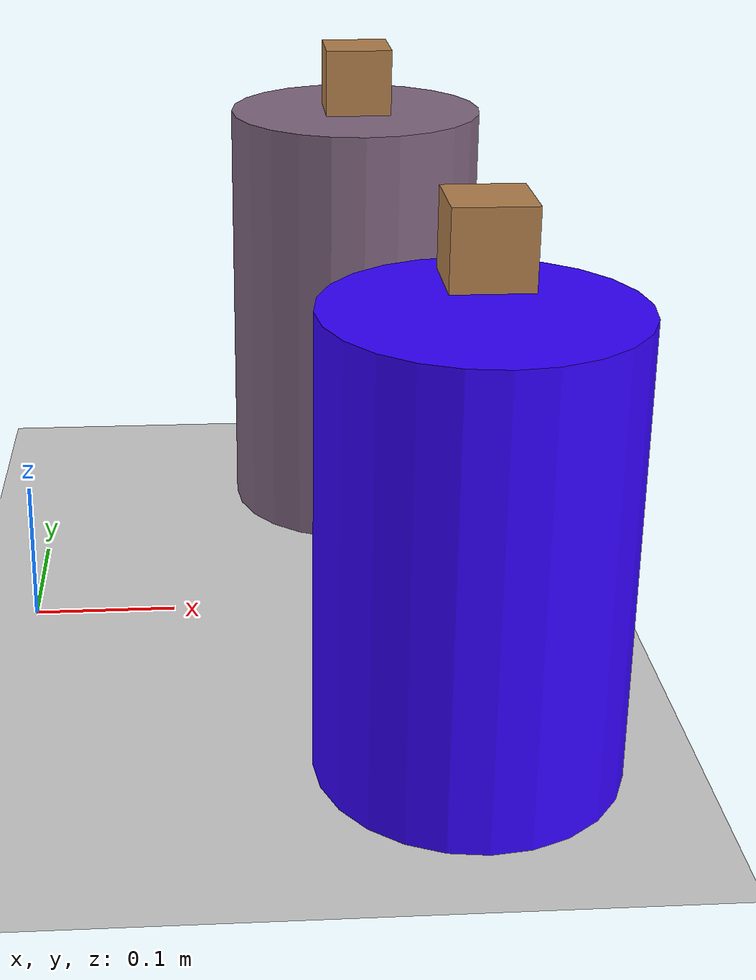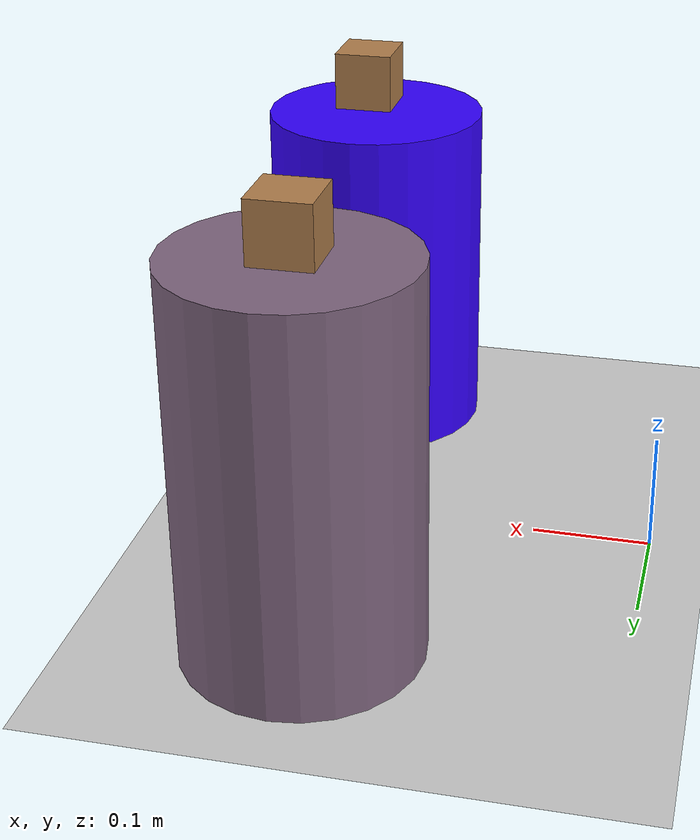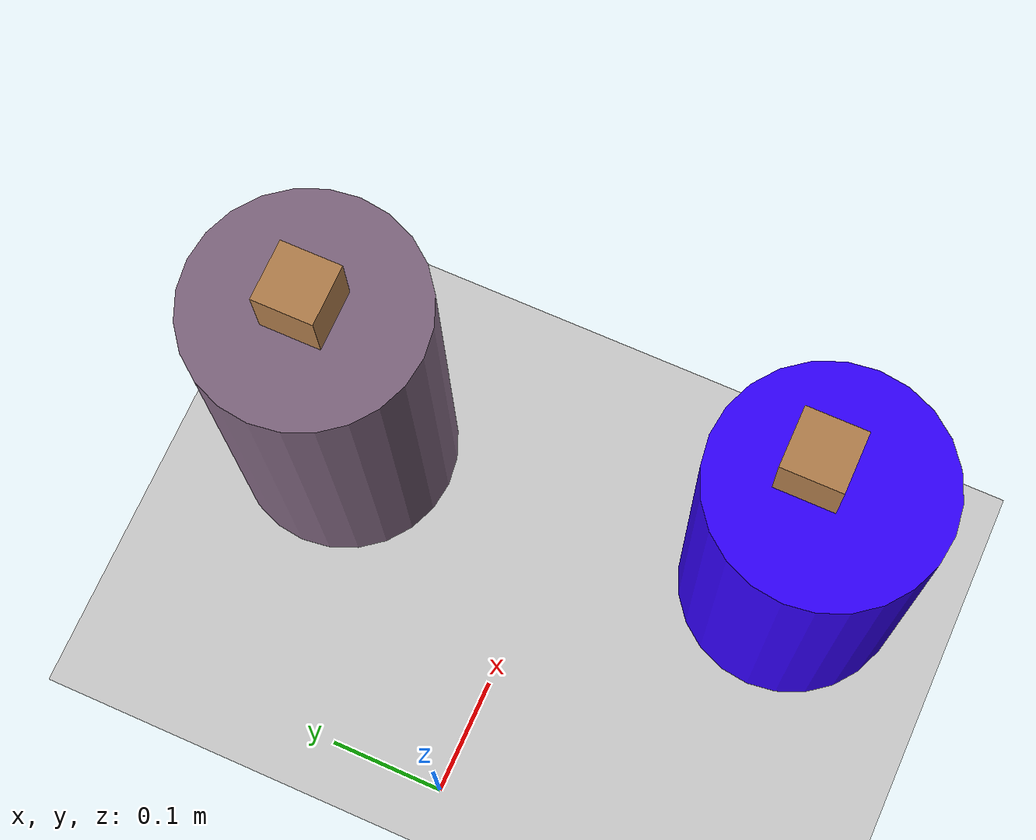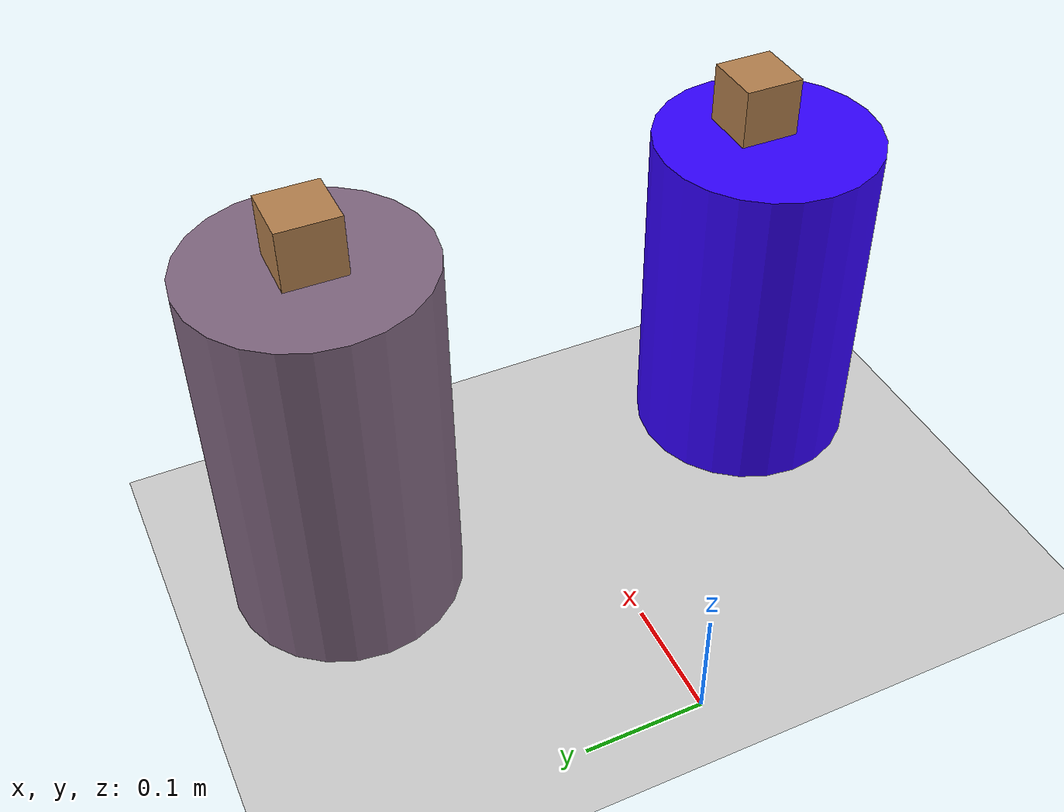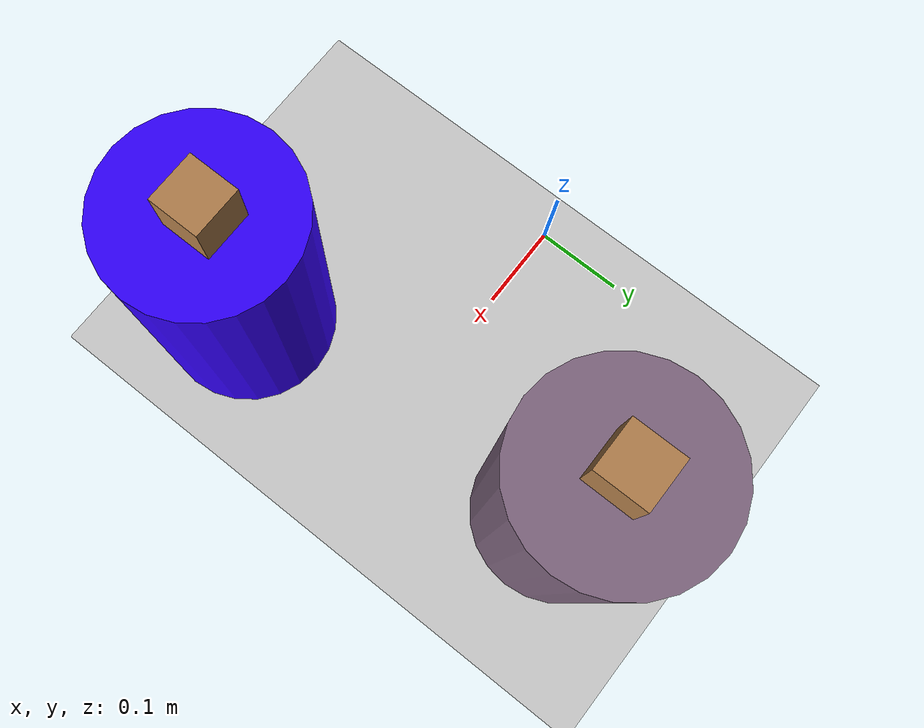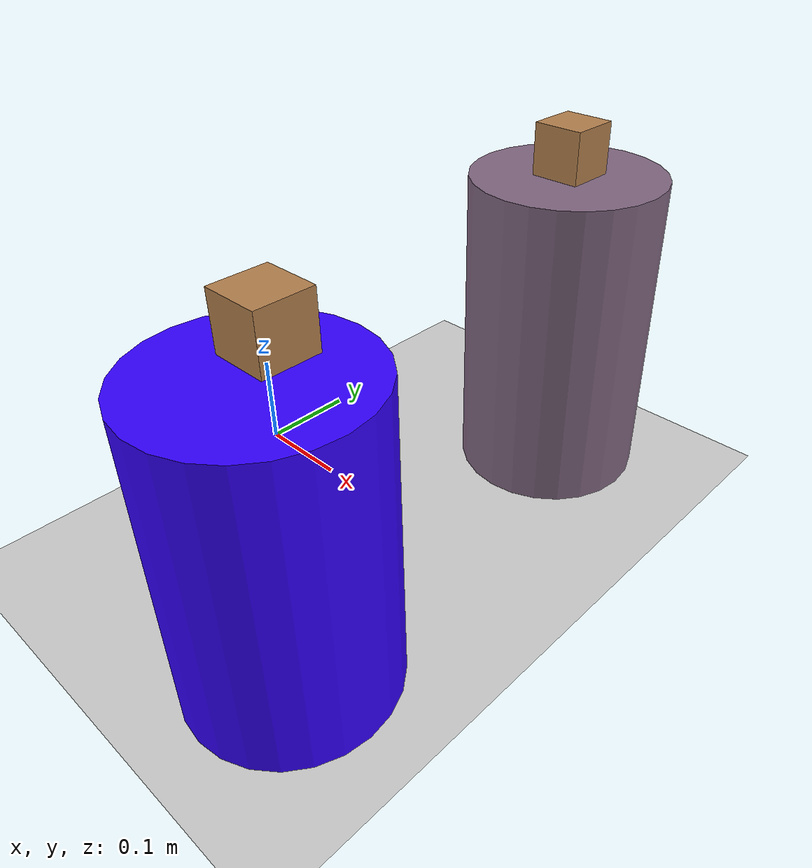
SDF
<?xml version="1.0" ?>
<sdf version="1.6">
  <world name="default">
    <include>
      <uri>model://ground_plane</uri>
    </include>

    <include>
      <uri>model://sun</uri>
    </include>

    <include>
      <uri>model://unit_cylnder</uri>
      <pose> 0.286532 -0.203272 0.150184 0 0 0</pose>
    </include>

    <include>
      <uri>model://unit_cylnder_green</uri>
      <pose> 0.24847 0.203243 0.163058 0 0 0</pose>
    </include>

    <include>
      <uri>model://green_wooden_cube</uri>
      <pose> 0.288971 -0.188986 0.312240 0 0 0</pose>
    </include>

    <include>
      <uri>model://blue_wooden_cube</uri>
      <pose> 0.248819 0.203177 0.32611 0 0 0</pose>
    </include> 2484724847

    <physics type="ode">
      <real_time_update_rate>1000.0</real_time_update_rate>
    </physics>

    <gravity>
      0.0 0.0 -9.8
    </gravity>

    <gui fullscreen='0'>
    </gui>

  </world>
</sdf>

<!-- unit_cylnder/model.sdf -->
<sdf version='1.7'>
  <model name='unit_cylnder'>
    <link name='link'>
      <inertial>
        <mass>0.921032</mass>
        <inertia>
          <ixx>0.00909678</ixx>
          <ixy>0</ixy>
          <ixz>0</ixz>
          <iyy>0.00909678</iyy>
          <iyz>0</iyz>
          <izz>0.00434426</izz>
        </inertia>
        <pose>0 0 0 0 -0 0</pose>
      </inertial>
      <self_collide>0</self_collide>
      <enable_wind>0</enable_wind>
      <kinematic>0</kinematic>
      <pose>0 0 0 0 -0 0</pose>
      <gravity>1</gravity>
      <visual name='visual'>
        <geometry>
          <cylinder>
            <radius>0.0971257</radius>
            <length>0.300367</length>
          </cylinder>
        </geometry>
        <material>
          <script>
            <name>Gazebo/Grey</name>
            <uri>file://media/materials/scripts/gazebo.material</uri>
          </script>
          <shader type='pixel'>
            <normal_map>__default__</normal_map>
          </shader>
          <ambient>0.5 0.4 0.4 0</ambient>
          <diffuse>0.2 0 1 1</diffuse>
          <specular>0.01 0.01 0.5 1</specular>
          <emissive>0 0 0 1</emissive>
        </material>
        <pose>0 0 0 0 -0 0</pose>
        <transparency>0</transparency>
        <cast_shadows>1</cast_shadows>
      </visual>
      <collision name='collision'>
        <laser_retro>0</laser_retro>
        <max_contacts>10</max_contacts>
        <pose>0 0 0 0 -0 0</pose>
        <geometry>
          <cylinder>
            <radius>0.097126</radius>
            <length>0.300367</length>
          </cylinder>
        </geometry>
        <surface>
          <friction>
            <ode>
              <mu>1</mu>
              <mu2>1</mu2>
              <fdir1>0 0 0</fdir1>
              <slip1>0</slip1>
              <slip2>0</slip2>
            </ode>
            <torsional>
              <coefficient>1</coefficient>
              <patch_radius>0</patch_radius>
              <surface_radius>0</surface_radius>
              <use_patch_radius>1</use_patch_radius>
              <ode>
                <slip>0</slip>
              </ode>
            </torsional>
          </friction>
          <bounce>
            <restitution_coefficient>0</restitution_coefficient>
            <threshold>1e+06</threshold>
          </bounce>
          <contact>
            <collide_without_contact>0</collide_without_contact>
            <collide_without_contact_bitmask>1</collide_without_contact_bitmask>
            <collide_bitmask>1</collide_bitmask>
            <ode>
              <soft_cfm>0</soft_cfm>
              <soft_erp>0.2</soft_erp>
              <kp>1e+13</kp>
              <kd>1</kd>
              <max_vel>0.01</max_vel>
              <min_depth>0</min_depth>
            </ode>
            <bullet>
              <split_impulse>1</split_impulse>
              <split_impulse_penetration_threshold>-0.01</split_impulse_penetration_threshold>
              <soft_cfm>0</soft_cfm>
              <soft_erp>0.2</soft_erp>
              <kp>1e+13</kp>
              <kd>1</kd>
            </bullet>
          </contact>
        </surface>
      </collision>
    </link>
    <static>1</static>
    <allow_auto_disable>1</allow_auto_disable>
  </model>
</sdf>

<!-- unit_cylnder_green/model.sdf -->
<sdf version='1.7'>
  <model name='unit_cylnder_green'>
    <link name='link'>
      <inertial>
        <mass>1</mass>
        <inertia>
          <ixx>0.145833</ixx>
          <ixy>0</ixy>
          <ixz>0</ixz>
          <iyy>0.145833</iyy>
          <iyz>0</iyz>
          <izz>0.125</izz>
        </inertia>
        <pose>0 0 0 0 -0 0</pose>
      </inertial>
      <self_collide>0</self_collide>
      <enable_wind>0</enable_wind>
      <kinematic>0</kinematic>
      <pose>0 0 0 0 -0 0</pose>
      <gravity>1</gravity>
      <visual name='visual'>
        <geometry>
          <cylinder>
            <radius>0.0971257</radius>
            <length>0.326116</length>
          </cylinder>
        </geometry>
        <material>
          <script>
            <name>Gazebo/Grey</name>
            <uri>file://media/materials/scripts/gazebo.material</uri>
          </script>
          <shader type='pixel'>
            <normal_map>__default__</normal_map>
          </shader>
          <ambient>0.5 1 0.6 0</ambient>
          <diffuse>0.5 0.4 0.5 1</diffuse>
          <specular>0.21 0.01 0.5 1</specular>
          <emissive>0 0 0 1</emissive>
        </material>
        <pose>0 0 0 0 -0 0</pose>
        <transparency>0</transparency>
        <cast_shadows>1</cast_shadows>
      </visual>
      <collision name='collision'>
        <laser_retro>0</laser_retro>
        <max_contacts>10</max_contacts>
        <pose>0 0 0 0 -0 0</pose>
        <geometry>
          <cylinder>
            <radius>0.097126</radius>
            <length>0.326116</length>
          </cylinder>
        </geometry>
        <surface>
          <friction>
            <ode>
              <mu>1</mu>
              <mu2>1</mu2>
              <fdir1>0 0 0</fdir1>
              <slip1>0</slip1>
              <slip2>0</slip2>
            </ode>
            <torsional>
              <coefficient>1</coefficient>
              <patch_radius>0</patch_radius>
              <surface_radius>0</surface_radius>
              <use_patch_radius>1</use_patch_radius>
              <ode>
                <slip>0</slip>
              </ode>
            </torsional>
          </friction>
          <bounce>
            <restitution_coefficient>0</restitution_coefficient>
            <threshold>1e+06</threshold>
          </bounce>
          <contact>
            <collide_without_contact>0</collide_without_contact>
            <collide_without_contact_bitmask>1</collide_without_contact_bitmask>
            <collide_bitmask>1</collide_bitmask>
            <ode>
              <soft_cfm>0</soft_cfm>
              <soft_erp>0.2</soft_erp>
              <kp>1e+13</kp>
              <kd>1</kd>
              <max_vel>0.01</max_vel>
              <min_depth>0</min_depth>
            </ode>
            <bullet>
              <split_impulse>1</split_impulse>
              <split_impulse_penetration_threshold>-0.01</split_impulse_penetration_threshold>
              <soft_cfm>0</soft_cfm>
              <soft_erp>0.2</soft_erp>
              <kp>1e+13</kp>
              <kd>1</kd>
            </bullet>
          </contact>
        </surface>
      </collision>
    </link>
    <static>1</static>
    <allow_auto_disable>1</allow_auto_disable>
  </model>
</sdf>

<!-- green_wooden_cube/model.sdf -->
<sdf version='1.7'>
  <model name='green_wooden_cube'>
    <link name='link'>
      <pose>0 0 0.025 0 -0 0</pose>
      <inertial>
        <mass>0.0565</mass>
        <inertia>
          <ixx>2.354e-05</ixx>
          <ixy>0</ixy>
          <ixz>0</ixz>
          <iyy>2.354e-05</iyy>
          <iyz>0</iyz>
          <izz>2.354e-05</izz>
        </inertia>
        <pose>0 0 0 0 -0 0</pose>
      </inertial>
      <self_collide>0</self_collide>
      <enable_wind>0</enable_wind>
      <kinematic>0</kinematic>
      <gravity>1</gravity>
      <visual name='visual'>
        <geometry>
          <box>
            <size>0.05 0.05 0.05</size>
          </box>
        </geometry>
        <material>
          <script>
            <uri>file://media/materials/scripts/gazebo.material</uri>
            <name>Gazebo/Wood</name>
          </script>
          <shader type='pixel'>
            <normal_map>__default__</normal_map>
          </shader>
          <diffuse>0 1 0 0</diffuse>
          <ambient>0 1 0 1</ambient>
          <specular>0 1 0 1</specular>
          <emissive>0 0 0 1</emissive>
        </material>
        <pose>0 0 0 0 -0 0</pose>
        <transparency>0</transparency>
        <cast_shadows>1</cast_shadows>
      </visual>
      <collision name='collision'>
        <laser_retro>0</laser_retro>
        <max_contacts>10</max_contacts>
        <pose>0 0 0 0 -0 0</pose>
        <geometry>
          <box>
            <size>0.05 0.05 0.05</size>
          </box>
        </geometry>
        <surface>
          <friction>
            <ode>
              <mu>1</mu>
              <mu2>1</mu2>
              <fdir1>0 0 0</fdir1>
              <slip1>0</slip1>
              <slip2>0</slip2>
            </ode>
            <torsional>
              <coefficient>1</coefficient>
              <patch_radius>0</patch_radius>
              <surface_radius>0.05</surface_radius>
              <use_patch_radius>0</use_patch_radius>
              <ode>
                <slip>0</slip>
              </ode>
            </torsional>
          </friction>
          <bounce>
            <restitution_coefficient>0</restitution_coefficient>
            <threshold>1e+06</threshold>
          </bounce>
          <contact>
            <collide_without_contact>0</collide_without_contact>
            <collide_without_contact_bitmask>1</collide_without_contact_bitmask>
            <collide_bitmask>1</collide_bitmask>
            <ode>
              <soft_cfm>0</soft_cfm>
              <soft_erp>0.2</soft_erp>
              <kp>100000</kp>
              <kd>1</kd>
              <max_vel>1</max_vel>
              <min_depth>0.001</min_depth>
            </ode>
            <bullet>
              <split_impulse>1</split_impulse>
              <split_impulse_penetration_threshold>-0.01</split_impulse_penetration_threshold>
              <soft_cfm>0</soft_cfm>
              <soft_erp>0.2</soft_erp>
              <kp>100000</kp>
              <kd>1</kd>
            </bullet>
          </contact>
        </surface>
      </collision>
    </link>
    <static>0</static>
    <allow_auto_disable>1</allow_auto_disable>
  </model>
</sdf>

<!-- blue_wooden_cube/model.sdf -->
<sdf version='1.7'>
  <model name='blue_wooden_cube'>
    <link name='link'>
      <pose>0 0 0.025 0 -0 0</pose>
      <inertial>
        <mass>0.0565</mass>
        <inertia>
          <ixx>2.354e-05</ixx>
          <ixy>0</ixy>
          <ixz>0</ixz>
          <iyy>2.354e-05</iyy>
          <iyz>0</iyz>
          <izz>2.354e-05</izz>
        </inertia>
        <pose>0 0 0 0 -0 0</pose>
      </inertial>
      <self_collide>0</self_collide>
      <enable_wind>0</enable_wind>
      <kinematic>0</kinematic>
      <gravity>1</gravity>
      <visual name='visual'>
        <geometry>
          <box>
            <size>0.05 0.05 0.05</size>
          </box>
        </geometry>
        <material>
          <script>
            <uri>file://media/materials/scripts/gazebo.material</uri>
            <name>Gazebo/Wood</name>
          </script>
          <shader type='pixel'>
            <normal_map>__default__</normal_map>
          </shader>
          <ambient>0 0 1 1</ambient>
          <diffuse>0 0 1 1</diffuse>
          <specular>0 0 1 1</specular>
          <emissive>0 0 0 1</emissive>
        </material>
        <pose>0 0 0 0 -0 0</pose>
        <transparency>0</transparency>
        <cast_shadows>1</cast_shadows>
      </visual>
      <collision name='collision'>
        <laser_retro>0</laser_retro>
        <max_contacts>10</max_contacts>
        <pose>0 0 0 0 -0 0</pose>
        <geometry>
          <box>
            <size>0.05 0.05 0.05</size>
          </box>
        </geometry>
        <surface>
          <friction>
            <ode>
              <mu>1</mu>
              <mu2>1</mu2>
              <fdir1>0 0 0</fdir1>
              <slip1>0</slip1>
              <slip2>0</slip2>
            </ode>
            <torsional>
              <coefficient>1</coefficient>
              <patch_radius>0</patch_radius>
              <surface_radius>0.05</surface_radius>
              <use_patch_radius>0</use_patch_radius>
              <ode>
                <slip>0</slip>
              </ode>
            </torsional>
          </friction>
          <bounce>
            <restitution_coefficient>0</restitution_coefficient>
            <threshold>1e+06</threshold>
          </bounce>
          <contact>
            <collide_without_contact>0</collide_without_contact>
            <collide_without_contact_bitmask>1</collide_without_contact_bitmask>
            <collide_bitmask>1</collide_bitmask>
            <ode>
              <soft_cfm>0</soft_cfm>
              <soft_erp>0.2</soft_erp>
              <kp>100000</kp>
              <kd>1</kd>
              <max_vel>1</max_vel>
              <min_depth>0.001</min_depth>
            </ode>
            <bullet>
              <split_impulse>1</split_impulse>
              <split_impulse_penetration_threshold>-0.01</split_impulse_penetration_threshold>
              <soft_cfm>0</soft_cfm>
              <soft_erp>0.2</soft_erp>
              <kp>100000</kp>
              <kd>1</kd>
            </bullet>
          </contact>
        </surface>
      </collision>
    </link>
    <static>0</static>
    <allow_auto_disable>1</allow_auto_disable>
  </model>
</sdf>
